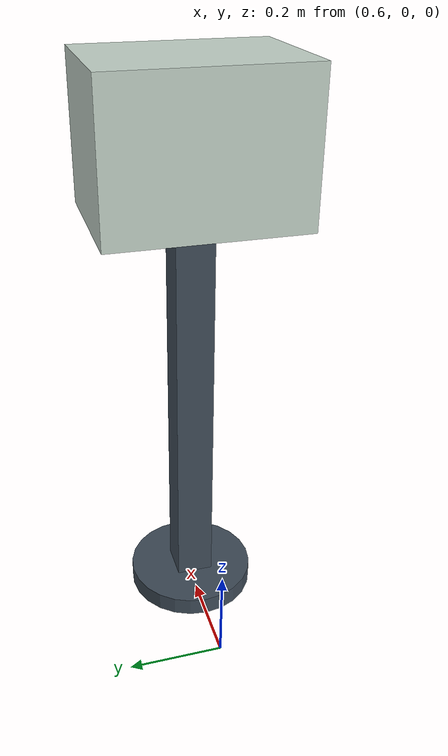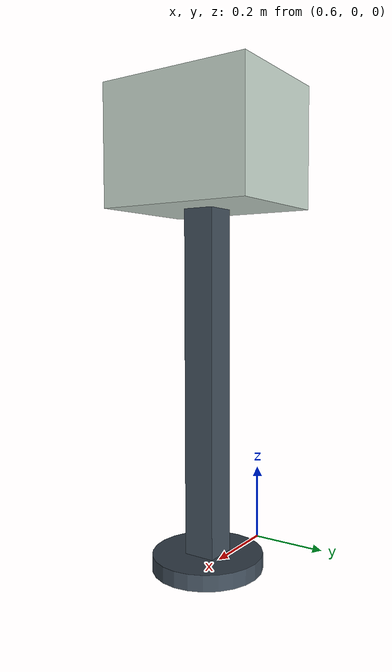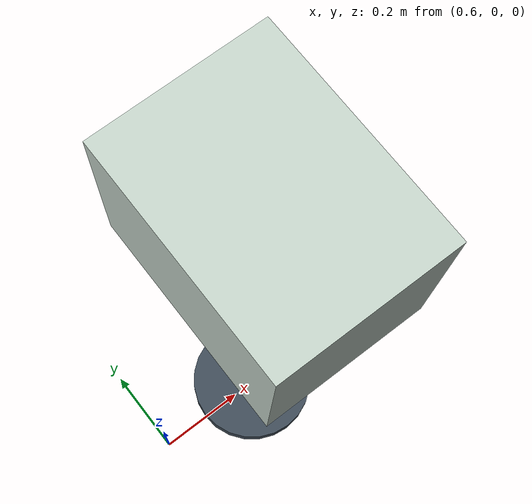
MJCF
<mujoco model="contact_box">
  <asset>
    <material name="contact_box_plastic" rgba="0.76 0.82 0.78 1"
              specular="0.15" shininess="0.20"/>
    <material name="contact_box_stand_metal" rgba="0.24 0.29 0.34 1"
              specular="0.20" shininess="0.30"/>
  </asset>

  <worldbody>
    <!-- Fixed pedestal: the 0.90 m post supports the box by contact only.
         Both +/-X box faces remain accessible for a future two-drone grasp. -->
    <body name="contact_box_stand" pos="0.85 0 0">
      <geom name="contact_box_stand_base" type="cylinder"
            pos="0 0 0.02" size="0.14 0.02"
            material="contact_box_stand_metal" contype="1" conaffinity="3"/>
      <geom name="contact_box_stand_post" type="box"
            pos="0 0 0.47" size="0.04 0.04 0.43"
            material="contact_box_stand_metal" contype="1" conaffinity="3"
            condim="3" friction="0.6 0 0" solref="0.01 1"/>
    </body>

    <body name="contact_box" pos="0.85 0 1.05">
      <freejoint name="contact_box_free"/>
      <inertial pos="0 0 0" mass="0.5"
                diaginertia="0.01668440 0.01286978 0.01668440"/>
      <!-- Accept ordinary geoms (bit 1) and the isolated drone plate (bit 2).
           Sliding friction enables a compression grasp without adhesion. -->
      <geom name="contact_box_collision" type="box" size="0.15 0.20 0.15"
            material="contact_box_plastic" contype="1" conaffinity="3"
            condim="3" friction="0.8 0 0" solref="0.01 1"
            solimp="0.95 0.99 0.001" margin="0"/>
    </body>
  </worldbody>
</mujoco>
